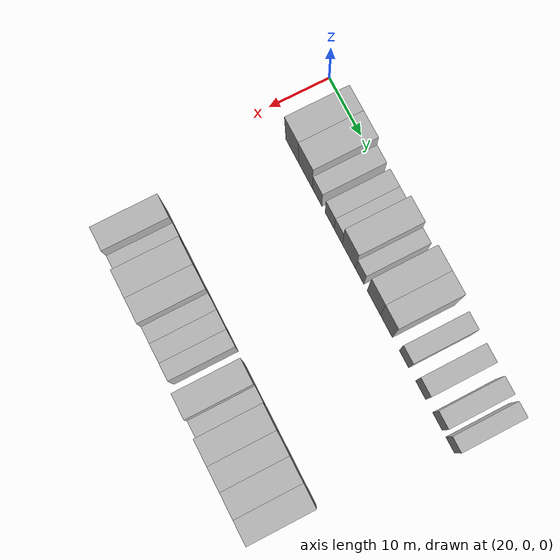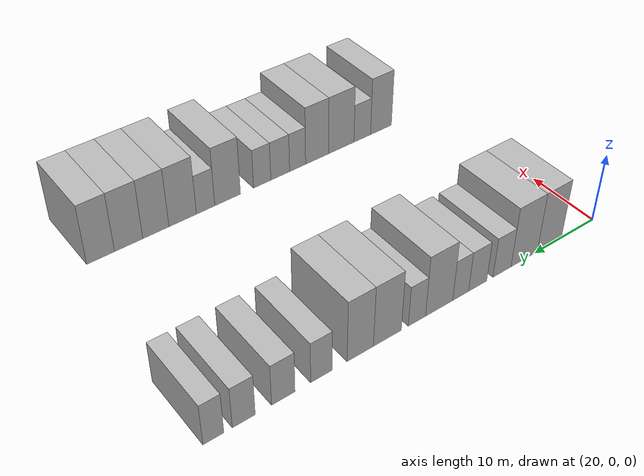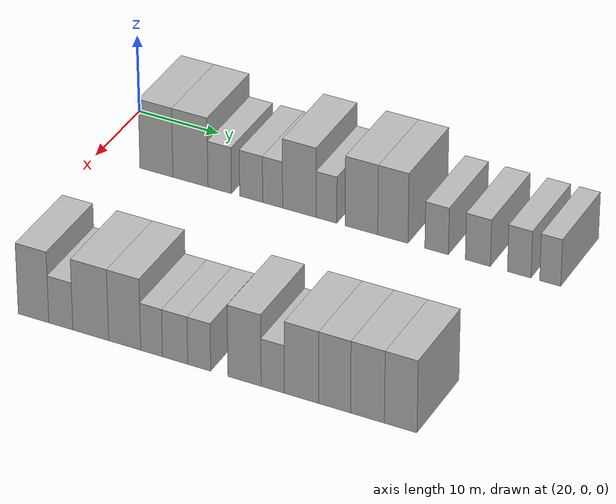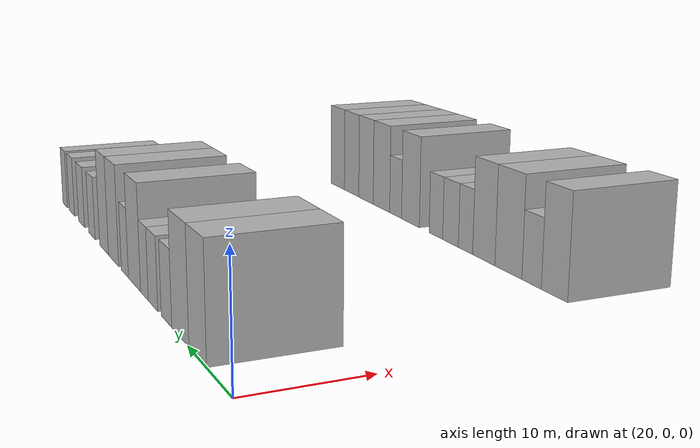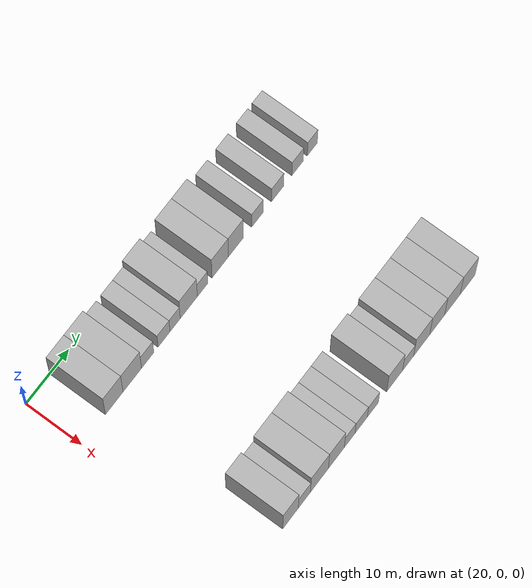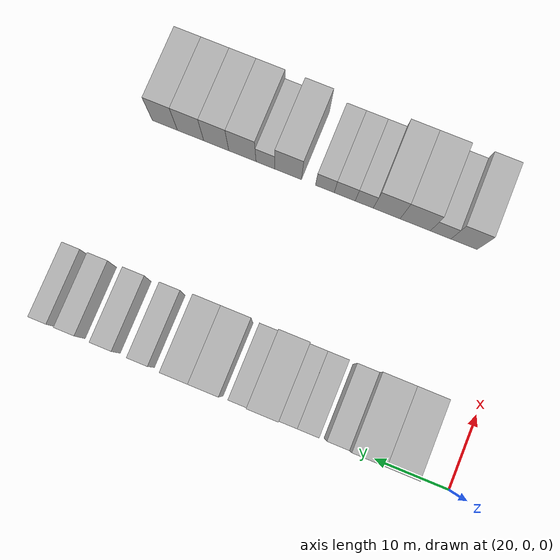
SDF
<sdf version="1.6">
 <world name="default">
  <model name="building_56">
   <static>1</static>
   <pose>25.0000 7.5608 0 0.000000 0.000000 0.000000</pose>
   <link name="link">
    <pose>0 0 4.50 0 0 0</pose>
    <collision name="collision"><geometry><box><size>10.0000 4.1126 9.0000</size></box></geometry></collision>
    <visual name="visual">
     <cast_shadows>0</cast_shadows>
     <geometry><box><size>10.0000 4.1126 9.0000</size></box></geometry>
     <material>
      <script>
       <uri>model://HANNAS_wall/materials/scripts</uri>
       <uri>model://HANNAS_wall/materials/textures</uri>
       <name>vrc/HANNAS_wall</name>
      </script>
     </material>
    </visual>
   </link>
  </model>
  <model name="building_57">
   <static>1</static>
   <pose>25.0000 11.7900 0 0.000000 0.000000 0.000000</pose>
   <link name="link">
    <pose>0 0 4.50 0 0 0</pose>
    <collision name="collision"><geometry><box><size>10.0000 4.3458 9.0000</size></box></geometry></collision>
    <visual name="visual">
     <cast_shadows>0</cast_shadows>
     <geometry><box><size>10.0000 4.3458 9.0000</size></box></geometry>
     <material>
      <script>
       <uri>model://HANNAS_wall/materials/scripts</uri>
       <uri>model://HANNAS_wall/materials/textures</uri>
       <name>vrc/HANNAS_wall</name>
      </script>
     </material>
    </visual>
   </link>
  </model>
  <model name="building_58">
   <static>1</static>
   <pose>25.0000 15.4108 0 0.000000 0.000000 0.000000</pose>
   <link name="link">
    <pose>0 0 3.00 0 0 0</pose>
    <collision name="collision"><geometry><box><size>10.0000 2.8957 6.0000</size></box></geometry></collision>
    <visual name="visual">
     <cast_shadows>0</cast_shadows>
     <geometry><box><size>10.0000 2.8957 6.0000</size></box></geometry>
     <material>
      <script>
       <uri>model://HANNAS_wall/materials/scripts</uri>
       <uri>model://HANNAS_wall/materials/textures</uri>
       <name>vrc/HANNAS_wall</name>
      </script>
     </material>
    </visual>
   </link>
  </model>
  <model name="building_59">
   <static>1</static>
   <pose>25.0000 19.2690 0 0.000000 0.000000 0.000000</pose>
   <link name="link">
    <pose>0 0 3.00 0 0 0</pose>
    <collision name="collision"><geometry><box><size>10.0000 2.8208 6.0000</size></box></geometry></collision>
    <visual name="visual">
     <cast_shadows>0</cast_shadows>
     <geometry><box><size>10.0000 2.8208 6.0000</size></box></geometry>
     <material>
      <script>
       <uri>model://HANNAS_wall/materials/scripts</uri>
       <uri>model://HANNAS_wall/materials/textures</uri>
       <name>vrc/HANNAS_wall</name>
      </script>
     </material>
    </visual>
   </link>
  </model>
  <model name="building_60">
   <static>1</static>
   <pose>25.0000 21.8940 0 0.000000 0.000000 0.000000</pose>
   <link name="link">
    <pose>0 0 3.00 0 0 0</pose>
    <collision name="collision"><geometry><box><size>10.0000 2.4291 6.0000</size></box></geometry></collision>
    <visual name="visual">
     <cast_shadows>0</cast_shadows>
     <geometry><box><size>10.0000 2.4291 6.0000</size></box></geometry>
     <material>
      <script>
       <uri>model://HANNAS_wall/materials/scripts</uri>
       <uri>model://HANNAS_wall/materials/textures</uri>
       <name>vrc/HANNAS_wall</name>
      </script>
     </material>
    </visual>
   </link>
  </model>
  <model name="building_61">
   <static>1</static>
   <pose>25.0000 25.1440 0 0.000000 0.000000 0.000000</pose>
   <link name="link">
    <pose>0 0 4.50 0 0 0</pose>
    <collision name="collision"><geometry><box><size>10.0000 4.0709 9.0000</size></box></geometry></collision>
    <visual name="visual">
     <cast_shadows>0</cast_shadows>
     <geometry><box><size>10.0000 4.0709 9.0000</size></box></geometry>
     <material>
      <script>
       <uri>model://HANNAS_wall/materials/scripts</uri>
       <uri>model://HANNAS_wall/materials/textures</uri>
       <name>vrc/HANNAS_wall</name>
      </script>
     </material>
    </visual>
   </link>
  </model>
  <model name="building_62">
   <static>1</static>
   <pose>25.0000 28.4302 0 0.000000 0.000000 0.000000</pose>
   <link name="link">
    <pose>0 0 3.00 0 0 0</pose>
    <collision name="collision"><geometry><box><size>10.0000 2.5014 6.0000</size></box></geometry></collision>
    <visual name="visual">
     <cast_shadows>0</cast_shadows>
     <geometry><box><size>10.0000 2.5014 6.0000</size></box></geometry>
     <material>
      <script>
       <uri>model://HANNAS_wall/materials/scripts</uri>
       <uri>model://HANNAS_wall/materials/textures</uri>
       <name>vrc/HANNAS_wall</name>
      </script>
     </material>
    </visual>
   </link>
  </model>
  <model name="building_63">
   <static>1</static>
   <pose>25.0000 32.6398 0 0.000000 0.000000 0.000000</pose>
   <link name="link">
    <pose>0 0 4.50 0 0 0</pose>
    <collision name="collision"><geometry><box><size>10.0000 3.9178 9.0000</size></box></geometry></collision>
    <visual name="visual">
     <cast_shadows>0</cast_shadows>
     <geometry><box><size>10.0000 3.9178 9.0000</size></box></geometry>
     <material>
      <script>
       <uri>model://HANNAS_wall/materials/scripts</uri>
       <uri>model://HANNAS_wall/materials/textures</uri>
       <name>vrc/HANNAS_wall</name>
      </script>
     </material>
    </visual>
   </link>
  </model>
  <model name="building_64">
   <static>1</static>
   <pose>25.0000 36.4016 0 0.000000 0.000000 0.000000</pose>
   <link name="link">
    <pose>0 0 4.50 0 0 0</pose>
    <collision name="collision"><geometry><box><size>10.0000 3.6057 9.0000</size></box></geometry></collision>
    <visual name="visual">
     <cast_shadows>0</cast_shadows>
     <geometry><box><size>10.0000 3.6057 9.0000</size></box></geometry>
     <material>
      <script>
       <uri>model://HANNAS_wall/materials/scripts</uri>
       <uri>model://HANNAS_wall/materials/textures</uri>
       <name>vrc/HANNAS_wall</name>
      </script>
     </material>
    </visual>
   </link>
  </model>
  <model name="building_65">
   <static>1</static>
   <pose>25.0000 41.5970 0 0.000000 0.000000 0.000000</pose>
   <link name="link">
    <pose>0 0 3.00 0 0 0</pose>
    <collision name="collision"><geometry><box><size>10.0000 2.7852 6.0000</size></box></geometry></collision>
    <visual name="visual">
     <cast_shadows>0</cast_shadows>
     <geometry><box><size>10.0000 2.7852 6.0000</size></box></geometry>
     <material>
      <script>
       <uri>model://HANNAS_wall/materials/scripts</uri>
       <uri>model://HANNAS_wall/materials/textures</uri>
       <name>vrc/HANNAS_wall</name>
      </script>
     </material>
    </visual>
   </link>
  </model>
  <model name="building_66">
   <static>1</static>
   <pose>25.0000 46.4576 0 0.000000 0.000000 0.000000</pose>
   <link name="link">
    <pose>0 0 3.00 0 0 0</pose>
    <collision name="collision"><geometry><box><size>10.0000 2.9360 6.0000</size></box></geometry></collision>
    <visual name="visual">
     <cast_shadows>0</cast_shadows>
     <geometry><box><size>10.0000 2.9360 6.0000</size></box></geometry>
     <material>
      <script>
       <uri>model://HANNAS_wall/materials/scripts</uri>
       <uri>model://HANNAS_wall/materials/textures</uri>
       <name>vrc/HANNAS_wall</name>
      </script>
     </material>
    </visual>
   </link>
  </model>
  <model name="building_67">
   <static>1</static>
   <pose>25.0000 51.3011 0 0.000000 0.000000 0.000000</pose>
   <link name="link">
    <pose>0 0 3.00 0 0 0</pose>
    <collision name="collision"><geometry><box><size>10.0000 2.7510 6.0000</size></box></geometry></collision>
    <visual name="visual">
     <cast_shadows>0</cast_shadows>
     <geometry><box><size>10.0000 2.7510 6.0000</size></box></geometry>
     <material>
      <script>
       <uri>model://HANNAS_wall/materials/scripts</uri>
       <uri>model://HANNAS_wall/materials/textures</uri>
       <name>vrc/HANNAS_wall</name>
      </script>
     </material>
    </visual>
   </link>
  </model>
  <model name="building_68">
   <static>1</static>
   <pose>25.0000 54.8988 0 0.000000 0.000000 0.000000</pose>
   <link name="link">
    <pose>0 0 3.00 0 0 0</pose>
    <collision name="collision"><geometry><box><size>10.0000 2.4443 6.0000</size></box></geometry></collision>
    <visual name="visual">
     <cast_shadows>0</cast_shadows>
     <geometry><box><size>10.0000 2.4443 6.0000</size></box></geometry>
     <material>
      <script>
       <uri>model://HANNAS_wall/materials/scripts</uri>
       <uri>model://HANNAS_wall/materials/textures</uri>
       <name>vrc/HANNAS_wall</name>
      </script>
     </material>
    </visual>
   </link>
  </model>
  <model name="building_157">
   <static>1</static>
   <pose>55.0000 9.0841 0 0.000000 0.000000 0.000000</pose>
   <link name="link">
    <pose>0 0 4.50 0 0 0</pose>
    <collision name="collision"><geometry><box><size>10.0000 3.6719 9.0000</size></box></geometry></collision>
    <visual name="visual">
     <cast_shadows>0</cast_shadows>
     <geometry><box><size>10.0000 3.6719 9.0000</size></box></geometry>
     <material>
      <script>
       <uri>model://HANNAS_wall/materials/scripts</uri>
       <uri>model://HANNAS_wall/materials/textures</uri>
       <name>vrc/HANNAS_wall</name>
      </script>
     </material>
    </visual>
   </link>
  </model>
  <model name="building_158">
   <static>1</static>
   <pose>55.0000 12.3547 0 0.000000 0.000000 0.000000</pose>
   <link name="link">
    <pose>0 0 3.00 0 0 0</pose>
    <collision name="collision"><geometry><box><size>10.0000 2.8694 6.0000</size></box></geometry></collision>
    <visual name="visual">
     <cast_shadows>0</cast_shadows>
     <geometry><box><size>10.0000 2.8694 6.0000</size></box></geometry>
     <material>
      <script>
       <uri>model://HANNAS_wall/materials/scripts</uri>
       <uri>model://HANNAS_wall/materials/textures</uri>
       <name>vrc/HANNAS_wall</name>
      </script>
     </material>
    </visual>
   </link>
  </model>
  <model name="building_159">
   <static>1</static>
   <pose>55.0000 15.9180 0 0.000000 0.000000 0.000000</pose>
   <link name="link">
    <pose>0 0 4.50 0 0 0</pose>
    <collision name="collision"><geometry><box><size>10.0000 4.2571 9.0000</size></box></geometry></collision>
    <visual name="visual">
     <cast_shadows>0</cast_shadows>
     <geometry><box><size>10.0000 4.2571 9.0000</size></box></geometry>
     <material>
      <script>
       <uri>model://HANNAS_wall/materials/scripts</uri>
       <uri>model://HANNAS_wall/materials/textures</uri>
       <name>vrc/HANNAS_wall</name>
      </script>
     </material>
    </visual>
   </link>
  </model>
  <model name="building_160">
   <static>1</static>
   <pose>55.0000 19.9426 0 0.000000 0.000000 0.000000</pose>
   <link name="link">
    <pose>0 0 4.50 0 0 0</pose>
    <collision name="collision"><geometry><box><size>10.0000 3.7922 9.0000</size></box></geometry></collision>
    <visual name="visual">
     <cast_shadows>0</cast_shadows>
     <geometry><box><size>10.0000 3.7922 9.0000</size></box></geometry>
     <material>
      <script>
       <uri>model://HANNAS_wall/materials/scripts</uri>
       <uri>model://HANNAS_wall/materials/textures</uri>
       <name>vrc/HANNAS_wall</name>
      </script>
     </material>
    </visual>
   </link>
  </model>
  <model name="building_161">
   <static>1</static>
   <pose>55.0000 23.1202 0 0.000000 0.000000 0.000000</pose>
   <link name="link">
    <pose>0 0 3.00 0 0 0</pose>
    <collision name="collision"><geometry><box><size>10.0000 2.5632 6.0000</size></box></geometry></collision>
    <visual name="visual">
     <cast_shadows>0</cast_shadows>
     <geometry><box><size>10.0000 2.5632 6.0000</size></box></geometry>
     <material>
      <script>
       <uri>model://HANNAS_wall/materials/scripts</uri>
       <uri>model://HANNAS_wall/materials/textures</uri>
       <name>vrc/HANNAS_wall</name>
      </script>
     </material>
    </visual>
   </link>
  </model>
  <model name="building_162">
   <static>1</static>
   <pose>55.0000 25.8810 0 0.000000 0.000000 0.000000</pose>
   <link name="link">
    <pose>0 0 3.00 0 0 0</pose>
    <collision name="collision"><geometry><box><size>10.0000 2.9584 6.0000</size></box></geometry></collision>
    <visual name="visual">
     <cast_shadows>0</cast_shadows>
     <geometry><box><size>10.0000 2.9584 6.0000</size></box></geometry>
     <material>
      <script>
       <uri>model://HANNAS_wall/materials/scripts</uri>
       <uri>model://HANNAS_wall/materials/textures</uri>
       <name>vrc/HANNAS_wall</name>
      </script>
     </material>
    </visual>
   </link>
  </model>
  <model name="building_163">
   <static>1</static>
   <pose>55.0000 28.6953 0 0.000000 0.000000 0.000000</pose>
   <link name="link">
    <pose>0 0 3.00 0 0 0</pose>
    <collision name="collision"><geometry><box><size>10.0000 2.6702 6.0000</size></box></geometry></collision>
    <visual name="visual">
     <cast_shadows>0</cast_shadows>
     <geometry><box><size>10.0000 2.6702 6.0000</size></box></geometry>
     <material>
      <script>
       <uri>model://HANNAS_wall/materials/scripts</uri>
       <uri>model://HANNAS_wall/materials/textures</uri>
       <name>vrc/HANNAS_wall</name>
      </script>
     </material>
    </visual>
   </link>
  </model>
  <model name="building_164">
   <static>1</static>
   <pose>55.0000 33.9431 0 0.000000 0.000000 0.000000</pose>
   <link name="link">
    <pose>0 0 4.50 0 0 0</pose>
    <collision name="collision"><geometry><box><size>10.0000 3.8254 9.0000</size></box></geometry></collision>
    <visual name="visual">
     <cast_shadows>0</cast_shadows>
     <geometry><box><size>10.0000 3.8254 9.0000</size></box></geometry>
     <material>
      <script>
       <uri>model://HANNAS_wall/materials/scripts</uri>
       <uri>model://HANNAS_wall/materials/textures</uri>
       <name>vrc/HANNAS_wall</name>
      </script>
     </material>
    </visual>
   </link>
  </model>
  <model name="building_165">
   <static>1</static>
   <pose>55.0000 37.1950 0 0.000000 0.000000 0.000000</pose>
   <link name="link">
    <pose>0 0 3.00 0 0 0</pose>
    <collision name="collision"><geometry><box><size>10.0000 2.6785 6.0000</size></box></geometry></collision>
    <visual name="visual">
     <cast_shadows>0</cast_shadows>
     <geometry><box><size>10.0000 2.6785 6.0000</size></box></geometry>
     <material>
      <script>
       <uri>model://HANNAS_wall/materials/scripts</uri>
       <uri>model://HANNAS_wall/materials/textures</uri>
       <name>vrc/HANNAS_wall</name>
      </script>
     </material>
    </visual>
   </link>
  </model>
  <model name="building_166">
   <static>1</static>
   <pose>55.0000 40.4906 0 0.000000 0.000000 0.000000</pose>
   <link name="link">
    <pose>0 0 4.50 0 0 0</pose>
    <collision name="collision"><geometry><box><size>10.0000 3.9127 9.0000</size></box></geometry></collision>
    <visual name="visual">
     <cast_shadows>0</cast_shadows>
     <geometry><box><size>10.0000 3.9127 9.0000</size></box></geometry>
     <material>
      <script>
       <uri>model://HANNAS_wall/materials/scripts</uri>
       <uri>model://HANNAS_wall/materials/textures</uri>
       <name>vrc/HANNAS_wall</name>
      </script>
     </material>
    </visual>
   </link>
  </model>
  <model name="building_167">
   <static>1</static>
   <pose>55.0000 44.2602 0 0.000000 0.000000 0.000000</pose>
   <link name="link">
    <pose>0 0 4.50 0 0 0</pose>
    <collision name="collision"><geometry><box><size>10.0000 3.6265 9.0000</size></box></geometry></collision>
    <visual name="visual">
     <cast_shadows>0</cast_shadows>
     <geometry><box><size>10.0000 3.6265 9.0000</size></box></geometry>
     <material>
      <script>
       <uri>model://HANNAS_wall/materials/scripts</uri>
       <uri>model://HANNAS_wall/materials/textures</uri>
       <name>vrc/HANNAS_wall</name>
      </script>
     </material>
    </visual>
   </link>
  </model>
  <model name="building_168">
   <static>1</static>
   <pose>55.0000 47.9798 0 0.000000 0.000000 0.000000</pose>
   <link name="link">
    <pose>0 0 4.50 0 0 0</pose>
    <collision name="collision"><geometry><box><size>10.0000 3.8125 9.0000</size></box></geometry></collision>
    <visual name="visual">
     <cast_shadows>0</cast_shadows>
     <geometry><box><size>10.0000 3.8125 9.0000</size></box></geometry>
     <material>
      <script>
       <uri>model://HANNAS_wall/materials/scripts</uri>
       <uri>model://HANNAS_wall/materials/textures</uri>
       <name>vrc/HANNAS_wall</name>
      </script>
     </material>
    </visual>
   </link>
  </model>
  <model name="building_169">
   <static>1</static>
   <pose>55.0000 51.7150 0 0.000000 0.000000 0.000000</pose>
   <link name="link">
    <pose>0 0 4.50 0 0 0</pose>
    <collision name="collision"><geometry><box><size>10.0000 3.6580 9.0000</size></box></geometry></collision>
    <visual name="visual">
     <cast_shadows>0</cast_shadows>
     <geometry><box><size>10.0000 3.6580 9.0000</size></box></geometry>
     <material>
      <script>
       <uri>model://HANNAS_wall/materials/scripts</uri>
       <uri>model://HANNAS_wall/materials/textures</uri>
       <name>vrc/HANNAS_wall</name>
      </script>
     </material>
    </visual>
   </link>
  </model>
 </world>
</sdf>
